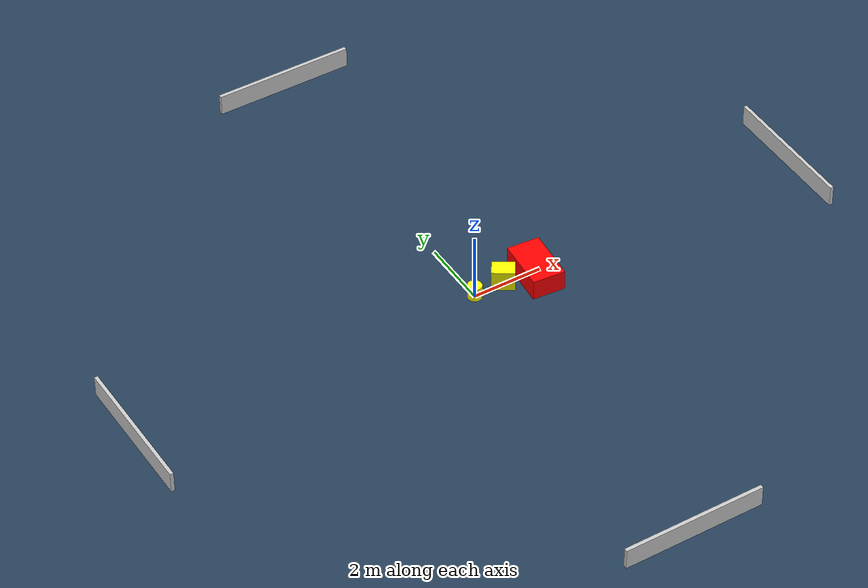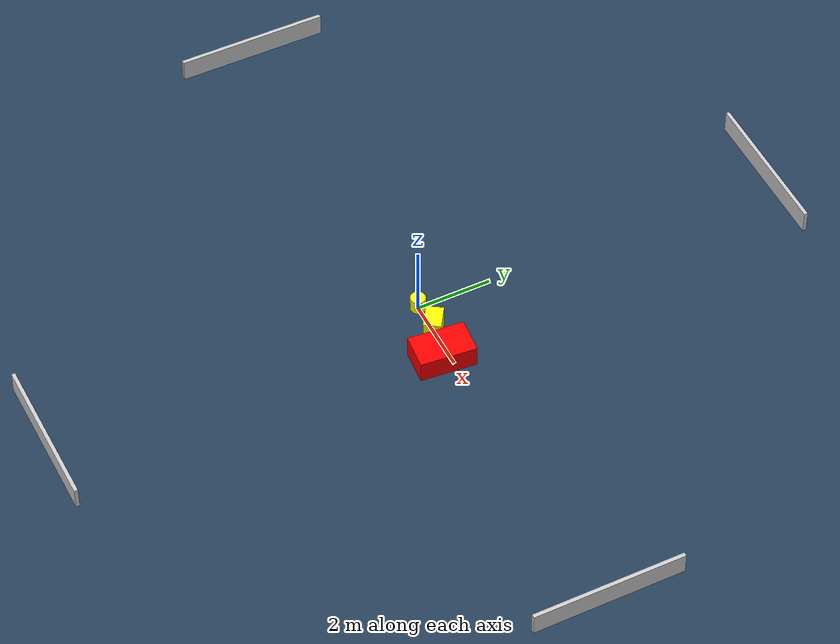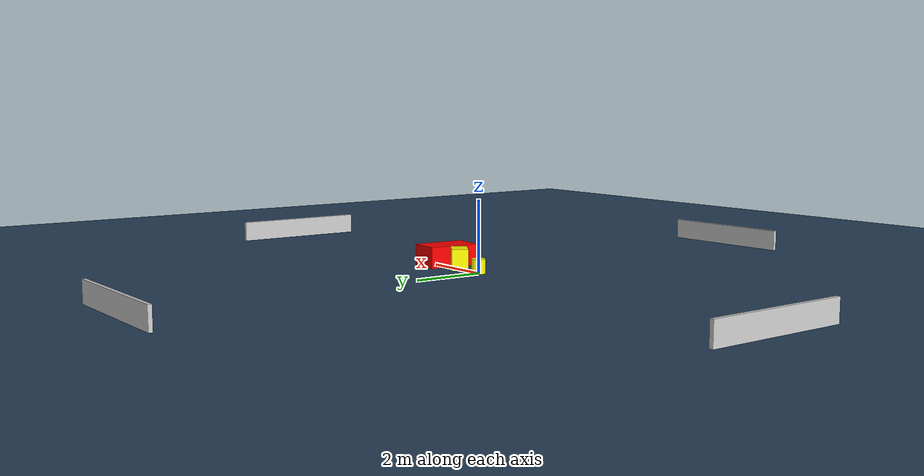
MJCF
<?xml version="1.0" ?>
<mujoco model="generated_environment">
  <option timestep="0.01" integrator="RK4" cone="elliptic"/>
  <default>
    <geom density="1"/>
  </default>
  <asset>
    <texture builtin="gradient" height="3072" name="skybox" rgb1="0.3 0.5 0.7" rgb2="0 0 0" type="skybox" width="512"/>
    <texture builtin="checker" height="300" name="groundplane" rgb1="0.2 0.3 0.4" rgb2="0.1 0.2 0.3" type="2d" width="300"/>
    <material name="groundplane" reflectance="0.2" texrepeat="5 5" texture="groundplane"/>
  </asset>
  <worldbody>
    <light dir="0 0 -1" directional="true" pos="0 0 1.5"/>
    <geom condim="3" friction="0.5 0.005 0.001" material="groundplane" name="floor" pos="0 0 0" size="0 0 0.05" type="plane"/>
    <body name="walls">
      <geom name="wall_1" condim="4" pos="-10.0 0.0 0.3" rgba="0.800000011920929 0.800000011920929 0.800000011920929 1.0" size="0.05 2.0 0.3" type="box"/>
      <geom name="wall_2" condim="4" pos="10.0 0.0 0.3" rgba="0.800000011920929 0.800000011920929 0.800000011920929 1.0" size="0.05 2.0 0.3" type="box"/>
      <geom name="wall_3" condim="4" pos="0.0 -10.0 0.3" rgba="0.800000011920929 0.800000011920929 0.800000011920929 1.0" size="2.0 0.05 0.3" type="box"/>
      <geom name="wall_4" condim="4" pos="0.0 10.0 0.3" rgba="0.800000011920929 0.800000011920929 0.800000011920929 1.0" size="2.0 0.05 0.3" type="box"/>
    </body>
    <body name="robot">
      <joint name="joint_x" type="slide" pos="0 0 0" axis="1 0 0"/>
      <joint name="joint_y" type="slide" pos="0 0 0" axis="0 1 0"/>
      <geom name="robot" type="cylinder" pos="0.0 0.0 0.2" size="0.2 0.2 0.0" mass="5.0" friction="1.0 0.005 0.0001" condim="4" rgba="1.0 1.0 0.0 1.0"/>
    </body>
    <body name="obstacle_1_movable">
      <geom name="obstacle_1_movable" condim="4" pos="0.8756880499079975 -0.003735595779220152 0.3" euler="0 0 56.91147431977307" friction="0.0 0.005 0.001" rgba="1.0 1.0 0.0 1.0" size="0.22686357531286455 0.3143654500657102 0.3" type="box" mass="0.1"/>
      <joint type="free"/>
    </body>
    <body name="obstacle_2_static">
      <geom name="obstacle_2_static" condim="4" pos="1.7564163997245927 -0.2023393681856948 0.3" euler="0 0 264.81178825770274" friction="0.0 0.005 0.001" rgba="1.0 0.0 0.0 1.0" size="0.7433815544797227 0.4624982522073306 0.3" type="box"/>
    </body>
  </worldbody>
  <actuator>
    <motor name="actuator_x" joint="joint_x" gear="1" ctrlrange="-1 1"/>
    <motor name="actuator_y" joint="joint_y" gear="1" ctrlrange="-1 1"/>
  </actuator>
</mujoco>
